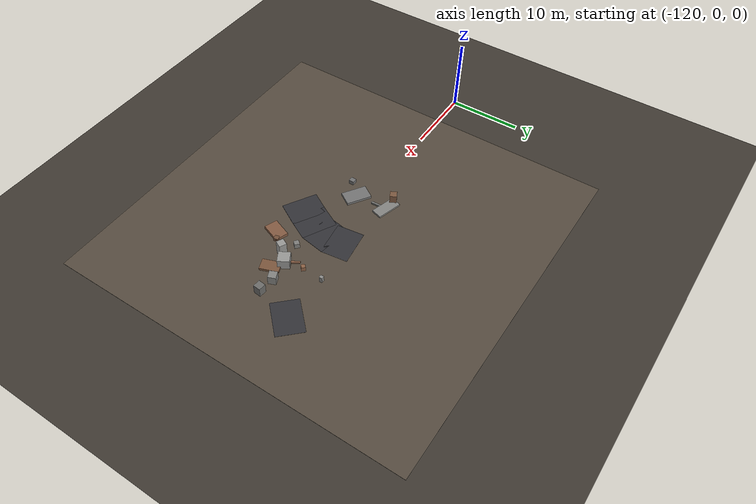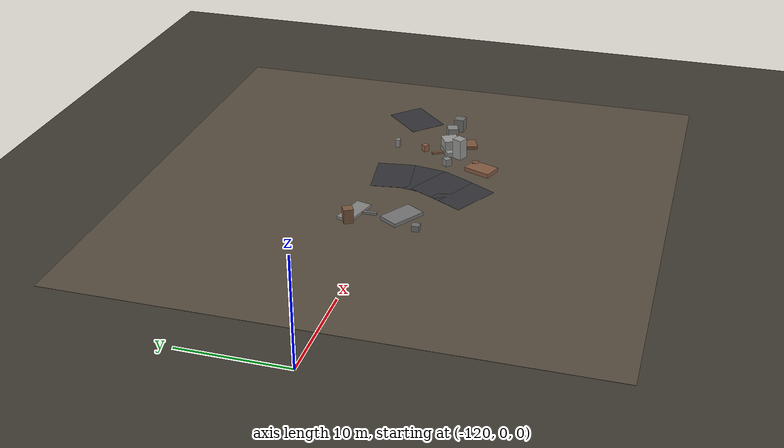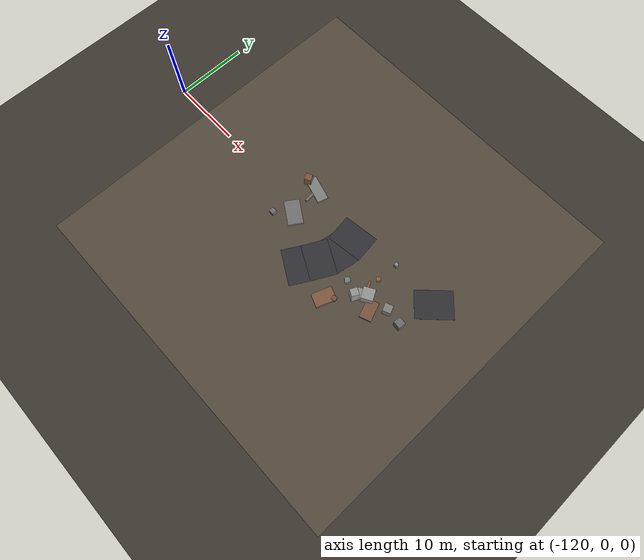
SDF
<sdf version="1.6">
 <world name="navitas_arena">
  <model name="ground_plane">
   <static>true</static>
   <link name="link">
    <collision name="collision">
     <geometry><plane><normal>0 0 1</normal><size>400 400</size></plane></geometry>
     <surface><friction><ode><mu>0.620</mu><mu2>0.620</mu2></ode></friction></surface>
    </collision>
    <visual name="visual">
     <cast_shadows>false</cast_shadows>
     <geometry><plane><normal>0 0 1</normal><size>400 400</size></plane></geometry>
     <material><ambient>0.250 0.230 0.200 1</ambient><diffuse>0.250 0.230 0.200 1</diffuse></material>
    </visual>
   </link>
  </model>
  <model name="gd_kolay">
   <static>true</static>
   <pose>-90.000 0.000 0.010 0 0 0.000</pose>
   <link name="link">
    <collision name="col"><geometry><box><size>50.000 50.000 0.020</size></box></geometry></collision>
    <visual name="vis">
     <geometry><box><size>50.000 50.000 0.020</size></box></geometry>
     <material><ambient>0.34 0.30 0.25 1</ambient><diffuse>0.34 0.30 0.25 1</diffuse></material>
    </visual>
   </link>
  </model>
  <model name="road_kolay_2_6">
   <static>true</static>
   <pose>-89.540 -5.667 0.040 0 0 1.052</pose>
   <link name="link">
    <collision name="col"><geometry><box><size>3.586 4.920 0.020</size></box></geometry></collision>
    <visual name="vis">
     <geometry><box><size>3.586 4.920 0.020</size></box></geometry>
     <material><ambient>0.20 0.20 0.22 1</ambient><diffuse>0.20 0.20 0.22 1</diffuse></material>
    </visual>
   </link>
  </model>
  <model name="road_kolay_2_7">
   <static>true</static>
   <pose>-88.267 -3.333 0.040 0 0 1.091</pose>
   <link name="link">
    <collision name="col"><geometry><box><size>3.530 4.920 0.020</size></box></geometry></collision>
    <visual name="vis">
     <geometry><box><size>3.530 4.920 0.020</size></box></geometry>
     <material><ambient>0.20 0.20 0.22 1</ambient><diffuse>0.20 0.20 0.22 1</diffuse></material>
    </visual>
   </link>
  </model>
  <model name="road_kolay_2_8">
   <static>true</static>
   <pose>-87.447 -0.883 0.040 0 0 1.406</pose>
   <link name="link">
    <collision name="col"><geometry><box><size>3.502 4.920 0.020</size></box></geometry></collision>
    <visual name="vis">
     <geometry><box><size>3.502 4.920 0.020</size></box></geometry>
     <material><ambient>0.20 0.20 0.22 1</ambient><diffuse>0.20 0.20 0.22 1</diffuse></material>
    </visual>
   </link>
  </model>
  <model name="road_kolay_2_9">
   <static>true</static>
   <pose>-87.422 1.800 0.040 0 0 1.705</pose>
   <link name="link">
    <collision name="col"><geometry><box><size>3.725 4.920 0.020</size></box></geometry></collision>
    <visual name="vis">
     <geometry><box><size>3.725 4.920 0.020</size></box></geometry>
     <material><ambient>0.20 0.20 0.22 1</ambient><diffuse>0.20 0.20 0.22 1</diffuse></material>
    </visual>
   </link>
  </model>
  <model name="road_kolay_3_11">
   <static>true</static>
   <pose>-74.249 3.000 0.040 0 0 2.358</pose>
   <link name="link">
    <collision name="col"><geometry><box><size>3.734 4.920 0.020</size></box></geometry></collision>
    <visual name="vis">
     <geometry><box><size>3.734 4.920 0.020</size></box></geometry>
     <material><ambient>0.20 0.20 0.22 1</ambient><diffuse>0.20 0.20 0.22 1</diffuse></material>
    </visual>
   </link>
  </model>
  <model name="deb_kolay_9">
   <static>true</static>
   <pose>-81.386 -1.357 0.106 0 0 2.096</pose>
   <link name="link">
    <collision name="col"><geometry><box><size>1.593 0.289 0.212</size></box></geometry></collision>
    <visual name="vis">
     <geometry><box><size>1.593 0.289 0.212</size></box></geometry>
     <material><ambient>0.52 0.36 0.26 1</ambient><diffuse>0.52 0.36 0.26 1</diffuse></material>
    </visual>
   </link>
  </model>
  <model name="deb_kolay_27">
   <static>true</static>
   <pose>-95.674 3.168 0.138 0 0 2.866</pose>
   <link name="link">
    <collision name="col"><geometry><box><size>3.512 1.505 0.276</size></box></geometry></collision>
    <visual name="vis">
     <geometry><box><size>3.512 1.505 0.276</size></box></geometry>
     <material><ambient>0.52 0.52 0.51 1</ambient><diffuse>0.52 0.52 0.51 1</diffuse></material>
    </visual>
   </link>
  </model>
  <model name="deb_kolay_32">
   <static>true</static>
   <pose>-79.192 -3.358 0.180 0 0 1.933</pose>
   <link name="link">
    <collision name="col"><geometry><box><size>2.547 1.590 0.361</size></box></geometry></collision>
    <visual name="vis">
     <geometry><box><size>2.547 1.590 0.361</size></box></geometry>
     <material><ambient>0.49 0.34 0.24 1</ambient><diffuse>0.49 0.34 0.24 1</diffuse></material>
    </visual>
   </link>
  </model>
  <model name="deb_kolay_35">
   <static>true</static>
   <pose>-81.184 0.212 0.333 0 0 2.367</pose>
   <link name="link">
    <collision name="col"><geometry><box><size>0.543 0.543 0.666</size></box></geometry></collision>
    <visual name="vis">
     <geometry><box><size>0.543 0.543 0.666</size></box></geometry>
     <material><ambient>0.55 0.38 0.27 1</ambient><diffuse>0.55 0.38 0.27 1</diffuse></material>
    </visual>
   </link>
  </model>
  <model name="deb_kolay_43">
   <static>true</static>
   <pose>-77.639 -1.759 0.637 0 0 1.973</pose>
   <link name="link">
    <collision name="col"><geometry><box><size>1.073 1.073 1.275</size></box></geometry></collision>
    <visual name="vis">
     <geometry><box><size>1.073 1.073 1.275</size></box></geometry>
     <material><ambient>0.52 0.52 0.51 1</ambient><diffuse>0.52 0.52 0.51 1</diffuse></material>
    </visual>
   </link>
  </model>
  <model name="deb_kolay_74">
   <static>true</static>
   <pose>-81.740 -3.491 1.045 0 0 2.671</pose>
   <link name="link">
    <collision name="col"><geometry><box><size>0.997 0.997 2.090</size></box></geometry></collision>
    <visual name="vis">
     <geometry><box><size>0.997 0.997 2.090</size></box></geometry>
     <material><ambient>0.60 0.60 0.59 1</ambient><diffuse>0.60 0.60 0.59 1</diffuse></material>
    </visual>
   </link>
  </model>
  <model name="deb_kolay_79">
   <static>true</static>
   <pose>-83.204 -5.470 0.228 0 0 0.228</pose>
   <link name="link">
    <collision name="col"><geometry><box><size>0.616 0.616 0.456</size></box></geometry></collision>
    <visual name="vis">
     <geometry><box><size>0.616 0.616 0.456</size></box></geometry>
     <material><ambient>0.46 0.32 0.23 1</ambient><diffuse>0.46 0.32 0.23 1</diffuse></material>
    </visual>
   </link>
  </model>
  <model name="deb_kolay_84">
   <static>true</static>
   <pose>-95.536 2.420 0.133 0 0 1.630</pose>
   <link name="link">
    <collision name="col"><geometry><box><size>2.815 0.292 0.267</size></box></geometry></collision>
    <visual name="vis">
     <geometry><box><size>2.815 0.292 0.267</size></box></geometry>
     <material><ambient>0.46 0.46 0.45 1</ambient><diffuse>0.46 0.46 0.45 1</diffuse></material>
    </visual>
   </link>
  </model>
  <model name="deb_kolay_85">
   <static>true</static>
   <pose>-83.762 -2.700 0.368 0 0 0.872</pose>
   <link name="link">
    <collision name="col"><geometry><box><size>0.686 0.686 0.735</size></box></geometry></collision>
    <visual name="vis">
     <geometry><box><size>0.686 0.686 0.735</size></box></geometry>
     <material><ambient>0.50 0.50 0.49 1</ambient><diffuse>0.50 0.50 0.49 1</diffuse></material>
    </visual>
   </link>
  </model>
  <model name="deb_kolay_100">
   <static>true</static>
   <pose>-80.912 -2.378 0.244 0 0 0.579</pose>
   <link name="link">
    <collision name="col"><geometry><box><size>2.132 1.434 0.487</size></box></geometry></collision>
    <visual name="vis">
     <geometry><box><size>2.132 1.434 0.487</size></box></geometry>
     <material><ambient>0.57 0.57 0.56 1</ambient><diffuse>0.57 0.57 0.56 1</diffuse></material>
    </visual>
   </link>
  </model>
  <model name="deb_kolay_118">
   <static>true</static>
   <pose>-95.300 -1.313 0.187 0 0 2.572</pose>
   <link name="link">
    <collision name="col"><geometry><box><size>3.457 2.058 0.374</size></box></geometry></collision>
    <visual name="vis">
     <geometry><box><size>3.457 2.058 0.374</size></box></geometry>
     <material><ambient>0.46 0.46 0.46 1</ambient><diffuse>0.46 0.46 0.46 1</diffuse></material>
    </visual>
   </link>
  </model>
  <model name="deb_kolay_128">
   <static>true</static>
   <pose>-84.192 -6.290 0.219 0 0 1.211</pose>
   <link name="link">
    <collision name="col"><geometry><box><size>2.732 1.814 0.438</size></box></geometry></collision>
    <visual name="vis">
     <geometry><box><size>2.732 1.814 0.438</size></box></geometry>
     <material><ambient>0.52 0.36 0.26 1</ambient><diffuse>0.52 0.36 0.26 1</diffuse></material>
    </visual>
   </link>
  </model>
  <model name="deb_kolay_143">
   <static>true</static>
   <pose>-80.554 -2.249 0.714 0 0 2.091</pose>
   <link name="link">
    <collision name="col"><geometry><box><size>1.570 1.570 1.429</size></box></geometry></collision>
    <visual name="vis">
     <geometry><box><size>1.570 1.570 1.429</size></box></geometry>
     <material><ambient>0.60 0.60 0.59 1</ambient><diffuse>0.60 0.60 0.59 1</diffuse></material>
    </visual>
   </link>
  </model>
  <model name="deb_kolay_151">
   <static>true</static>
   <pose>-80.986 3.148 0.413 0 0 0.024</pose>
   <link name="link">
    <collision name="col"><geometry><box><size>0.438 0.438 0.827</size></box></geometry></collision>
    <visual name="vis">
     <geometry><box><size>0.438 0.438 0.827</size></box></geometry>
     <material><ambient>0.56 0.56 0.55 1</ambient><diffuse>0.56 0.56 0.55 1</diffuse></material>
    </visual>
   </link>
  </model>
  <model name="deb_kolay_155">
   <static>true</static>
   <pose>-97.195 -3.193 0.294 0 0 1.563</pose>
   <link name="link">
    <collision name="col"><geometry><box><size>0.709 0.709 0.588</size></box></geometry></collision>
    <visual name="vis">
     <geometry><box><size>0.709 0.709 0.588</size></box></geometry>
     <material><ambient>0.44 0.44 0.44 1</ambient><diffuse>0.44 0.44 0.44 1</diffuse></material>
    </visual>
   </link>
  </model>
  <model name="deb_kolay_171">
   <static>true</static>
   <pose>-97.334 3.215 0.707 0 0 0.488</pose>
   <link name="link">
    <collision name="col"><geometry><box><size>0.932 0.932 1.414</size></box></geometry></collision>
    <visual name="vis">
     <geometry><box><size>0.932 0.932 1.414</size></box></geometry>
     <material><ambient>0.49 0.35 0.25 1</ambient><diffuse>0.49 0.35 0.25 1</diffuse></material>
    </visual>
   </link>
  </model>
  <model name="chic_kolay_4">
   <static>true</static>
   <pose>-75.411 -2.027 0.675 0 0 1.469</pose>
   <link name="link">
    <collision name="col"><geometry><box><size>1.016 1.016 1.350</size></box></geometry></collision>
    <visual name="vis">
     <geometry><box><size>1.016 1.016 1.350</size></box></geometry>
     <material><ambient>0.43 0.43 0.42 1</ambient><diffuse>0.43 0.43 0.42 1</diffuse></material>
    </visual>
   </link>
  </model>
  <model name="rec_cam">
   <static>true</static>
   <pose>-90.000 0.000 72 0 1.5708 1.5708</pose>
   <link name="link">
    <sensor name="cam" type="camera">
     <camera>
      <horizontal_fov>1.25</horizontal_fov>
      <image><width>1280</width><height>720</height><format>R8G8B8</format></image>
      <clip><near>0.1</near><far>200</far></clip>
      <save enabled="true"><path>/tmp/frames</path></save>
     </camera>
     <always_on>1</always_on>
     <update_rate>30</update_rate>
    </sensor>
   </link>
  </model>
 </world>
</sdf>
